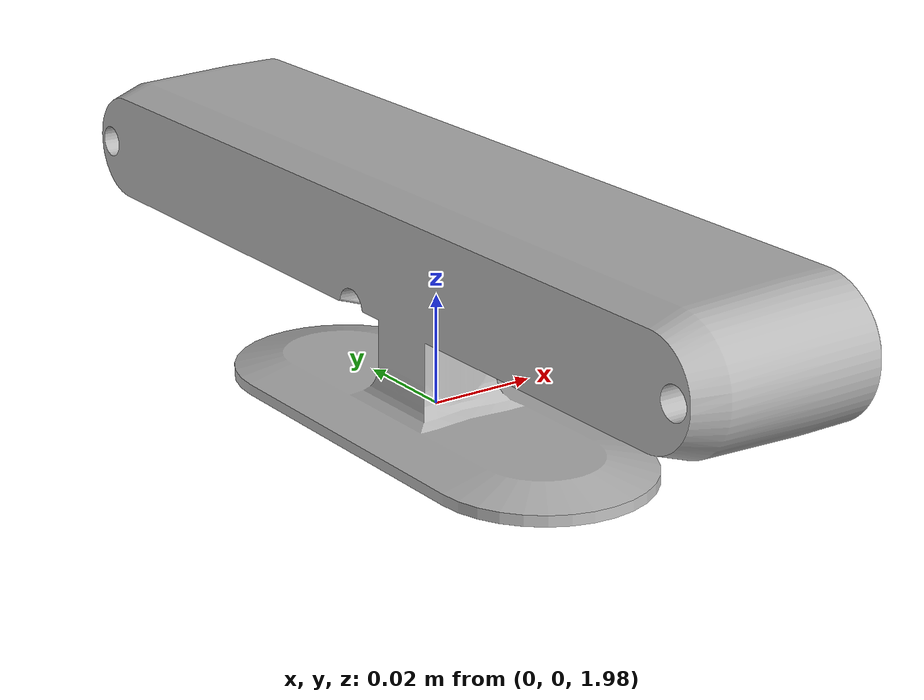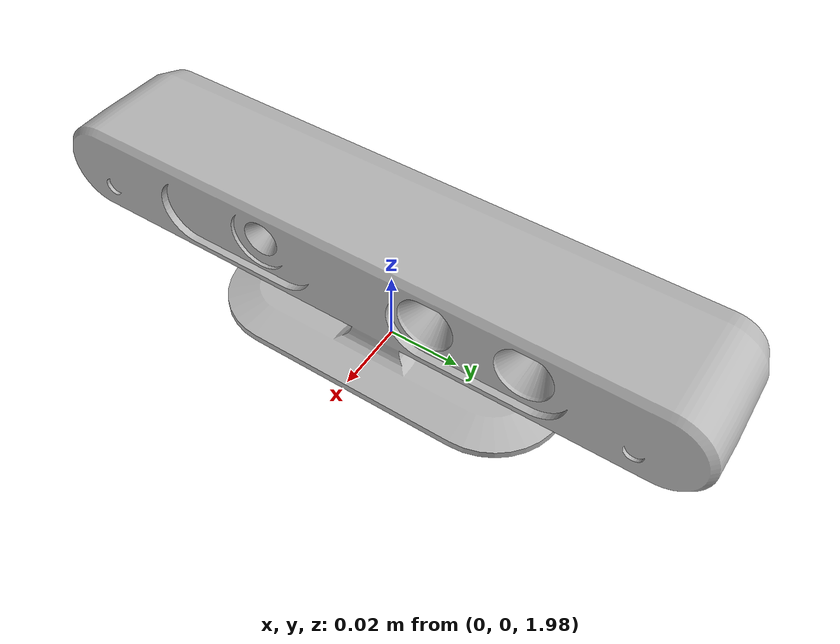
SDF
<?xml version="1.0" ?>
<sdf version="1.6">
  <model name="asus_xtion_pro_camera">
    <pose>0 0 2 0 0 0</pose>
    <link name="link">
      <inertial>
        <mass>0.316</mass>
        <inertia>
          <ixx>.0007765</ixx>
          <ixy>0</ixy>
          <ixz>0</ixz>
          <iyy>.0000725</iyy>
          <iyz>0</iyz>
          <izz>.0007657</izz>
        </inertia>
      </inertial>
      <gravity>0</gravity>
      <self_collide>0</self_collide>
      <static>1</static>
      <collision name="collision">
        <geometry>
          <box>
            <size>0.04 0.18 0.047</size>
          </box>
        </geometry>
        <surface>
          <contact>
            <ode>
              <max_vel>0.1</max_vel>
              <min_depth>0.001</min_depth>
            </ode>
          </contact>
          <friction>
            <ode>
              <mu>0.4</mu>
              <mu2>0.4</mu2>
            </ode>
          </friction>
        </surface>
      </collision>
      <visual name="visual">
        <geometry>
          <mesh>
            <uri>model://asus_xtion_pro_camera/meshes/asus_xtion_pro_camera.dae</uri>
          </mesh>
        </geometry>
      </visual>
      <sensor name="camera" type="depth">
        <pose>0.0085 0.0105 0.0197 0 0 0</pose>
        <update_rate>30</update_rate>
        <camera>
          <horizontal_fov>1.01229</horizontal_fov>
          <image>
            <width>640</width>
            <height>480</height>
            <format>R8G8B8</format>
          </image>
          <clip>
            <near>0.3</near>
            <far>3.5</far>
          </clip>
        </camera>
        <plugin name="camera_plugin" filename="libgazebo_ros_openni_kinect.so">
          <baseline>0.2</baseline>
          <alwaysOn>true</alwaysOn>
          <updateRate>0.0</updateRate>
          <cameraName>camera_ir</cameraName>
          <imageTopicName>/camera/color/image_raw</imageTopicName>
          <cameraInfoTopicName>/camera/color/camera_info</cameraInfoTopicName>
          <depthImageTopicName>/camera/depth/image_raw</depthImageTopicName>
          <depthImageCameraInfoTopicName>/camera/depth/camera_info</depthImageCameraInfoTopicName>
          <pointCloudTopicName>/camera/depth/points</pointCloudTopicName>
          <frameName>camera_link</frameName>
          <pointCloudCutoff>0.5</pointCloudCutoff>
          <pointCloudCutoffMax>3.0</pointCloudCutoffMax>
          <distortionK1>0</distortionK1>
          <distortionK2>0</distortionK2>
          <distortionK3>0</distortionK3>
          <distortionT1>0</distortionT1>
          <distortionT2>0</distortionT2>
          <CxPrime>0</CxPrime>
          <Cx>0</Cx>
          <Cy>0</Cy>
          <focalLength>0</focalLength>
          <hackBaseline>0</hackBaseline>
        </plugin>
      </sensor>
    </link>
  </model>
</sdf>
